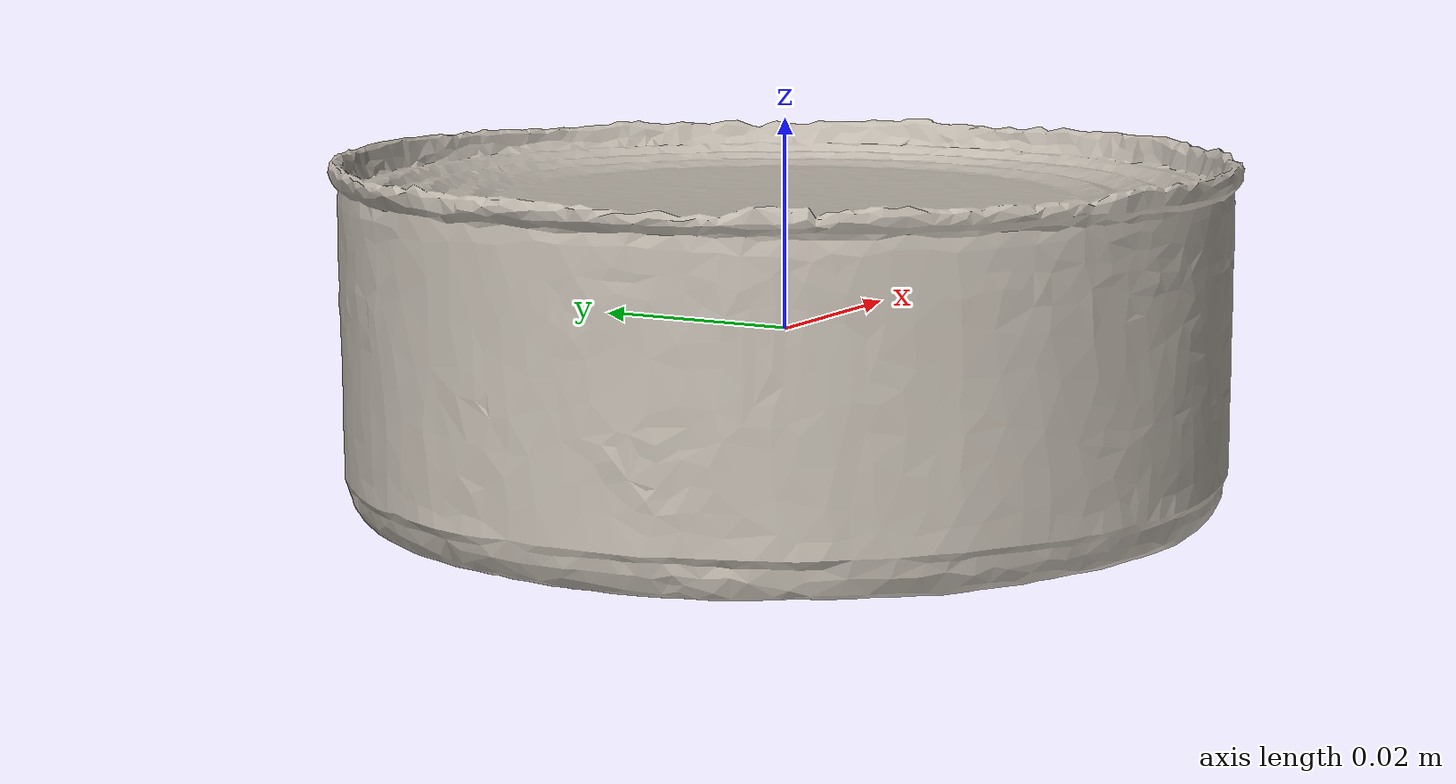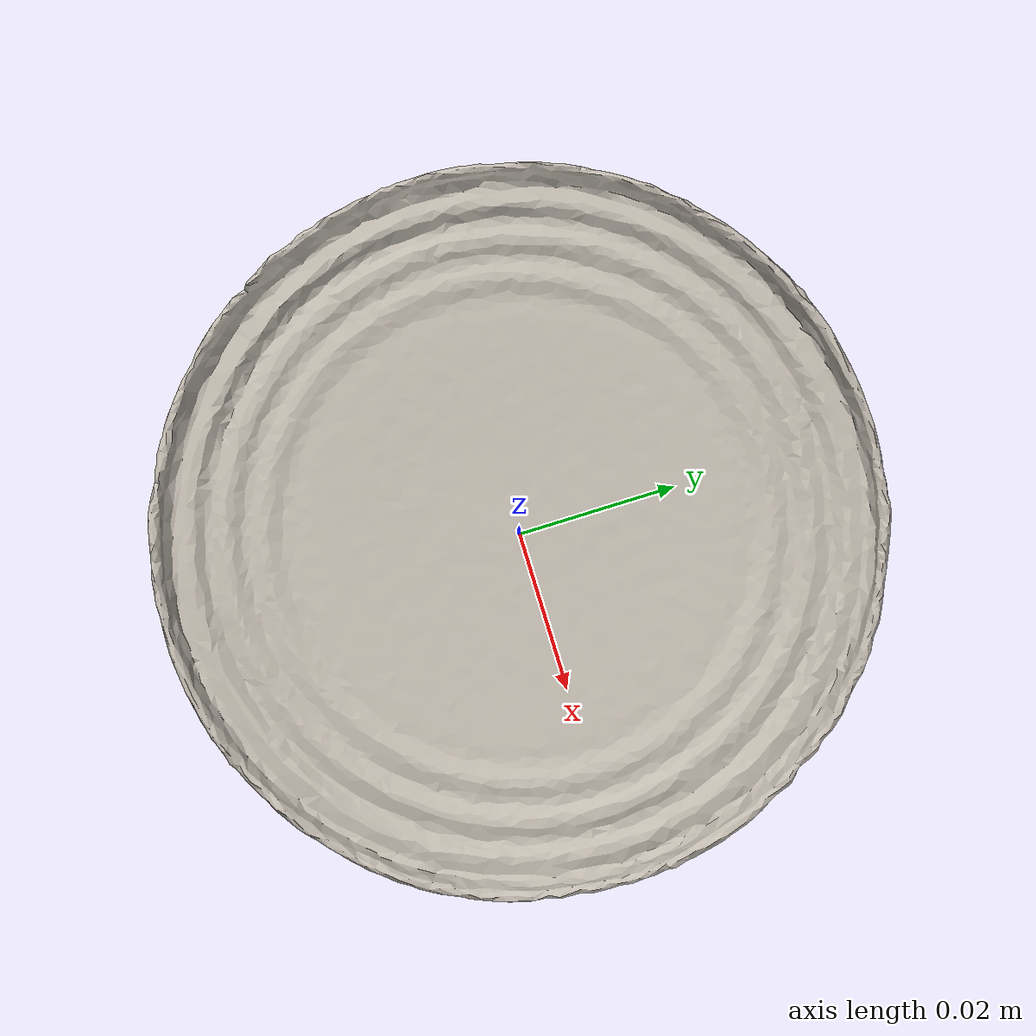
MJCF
<mujoco model="tuna_fish_can">
  <default>
    <default class="visual">
      <geom group="1" type="mesh" contype="0" conaffinity="0"/>
    </default>
    <default class="collision">
      <geom group="0" type="mesh"/>
    </default>
  </default>
  <asset>
    <texture type="2d" name="tuna_fish_can" file="tuna_fish_can.png"/>
    <material name="tuna_fish_can" texture="tuna_fish_can" specular="0.4000000000000001" shininess="0.001"/>
    <mesh name="tuna_fish_can" file="tuna_fish_can.obj"/>
  </asset>
  <worldbody>
    <body>
    <body name="object">
      <geom material="tuna_fish_can" mesh="tuna_fish_can" class="visual"/>
      <geom mesh="tuna_fish_can" class="collision"/>
    </body>
      <site rgba="0 0 0 0" size="0.005" pos="0 0 -0.04" name="bottom_site" />
      <site rgba="0 0 0 0" size="0.005" pos="0 0 0.04" name="top_site" />
      <site rgba="0 0 0 0" size="0.005" pos="0.005 0.005 0" name="horizontal_radius_site" />
   </body>
  </worldbody>
</mujoco>
